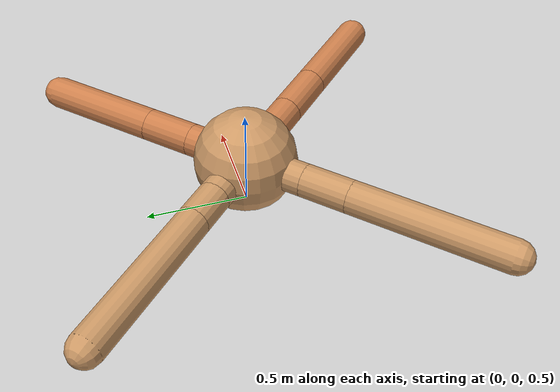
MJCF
<mujoco model="ant">
  <compiler angle="degree" coordinate="local" inertiafromgeom="true" />
  <option integrator="RK4" timestep="0.01" />
  <custom>
    <numeric data="0.0 0.0 0.55 1.0 0.0 0.0 0.0 0.0 1.0 0.0 -1.0 0.0 -1.0 0.0 1.0" name="init_qpos" />
  </custom>
  <default>
    <joint armature="1" damping="1" limited="true" />
    <geom conaffinity="0" condim="3" density="5.0" friction="1.5 0.1 0.1" margin="0.01" rgba="0.8 0.6 0.4 1" />
  </default>
  <worldbody>
    <body name="torso" pos="0 0 0.75">
      <geom name="torso_geom" pos="0 0 0" size="0.25" type="sphere" />

      <body name="front_left_leg" pos="0 0 0">
        <geom fromto="0.0 0.0 0.0 0.21171355510067494 0.21171355510067494 0.0" name="aux_1_geom" size="0.08" type="capsule" rgba=".8 .5 .3 1" />
        <body name="aux_1" pos="0.21171355510067494 0.21171355510067494 0.0">
          <joint axis="0 0 1" name="hip_1" pos="0.0 0.0 0.0" range="-40 40" type="hinge" />
          <geom fromto="0.0 0.0 0.0 0.1734951997041448 0.1734951997041448 0.0" name="left_leg_geom" size="0.08" type="capsule" rgba=".8 .5 .3 1" />
          <body pos="0.1734951997041448 0.1734951997041448 0.0" name="front_left_foot">
            <joint axis="-1 1 0" name="ankle_1" pos="0.0 0.0 0.0" range="30 100" type="hinge" />
            <geom fromto="0.0 0.0 0.0 0.4024233008820799 0.4024233008820799 0.0" name="left_ankle_geom" size="0.08" type="capsule" rgba=".8 .5 .3 1" />
          </body>
        </body>
      </body>
      <body name="front_right_leg" pos="0 0 0">
        <geom fromto="0.0 0.0 0.0 -0.20645844132458113 0.20645844132458113 0.0" name="aux_2_geom" size="0.08" type="capsule" />
        <body name="aux_2" pos="-0.20645844132458113 0.20645844132458113 0.0">
          <joint axis="0 0 1" name="hip_2" pos="0.0 0.0 0.0" range="-40 40" type="hinge" />
          <geom fromto="0.0 0.0 0.0 -0.12540304983378872 0.12540304983378872 0.0" name="right_leg_geom" size="0.08" type="capsule" />
          <body pos="-0.12540304983378872 0.12540304983378872 0.0" name="front_right_foot">
            <joint axis="1 1 0" name="ankle_2" pos="0.0 0.0 0.0" range="-100 -30" type="hinge" />
            <geom fromto="0.0 0.0 0.0 -0.5400588570009816 0.5400588570009816 0.0" name="right_ankle_geom" size="0.08" type="capsule" />
          </body>
        </body>
      </body>
      <body name="left_back_leg" pos="0 0 0">
        <geom fromto="0.0 0.0 0.0 -0.2209106217584791 -0.2209106217584791 0.0" name="aux_3_geom" size="0.08" type="capsule" />
        <body name="aux_3" pos="-0.2209106217584791 -0.2209106217584791 0.0">
          <joint axis="0 0 1" name="hip_3" pos="0.0 0.0 0.0" range="-40 40" type="hinge" />
          <geom fromto="0.0 0.0 0.0 -0.16329081533682338 -0.16329081533682338 0.0" name="back_leg_geom" size="0.08" type="capsule" />
          <body pos="-0.16329081533682338 -0.16329081533682338 0.0" name="left_back_foot">
            <joint axis="-1 1 0" name="ankle_3" pos="0.0 0.0 0.0" range="-100 -30" type="hinge" />
            <geom fromto="0.0 0.0 0.0 -0.5382719876646167 -0.5382719876646167 0.0" name="third_ankle_geom" size="0.08" type="capsule" />
          </body>
        </body>
      </body>
      <body name="right_back_leg" pos="0 0 0">
        <geom fromto="0.0 0.0 0.0 0.297533979901728 -0.297533979901728 0.0" name="aux_4_geom" size="0.08" type="capsule" rgba=".8 .5 .3 1" />
        <body name="aux_4" pos="0.297533979901728 -0.297533979901728 0.0">
          <joint axis="0 0 1" name="hip_4" pos="0.0 0.0 0.0" range="-40 40" type="hinge" />
          <geom fromto="0.0 0.0 0.0 0.19637023210632612 -0.19637023210632612 0.0" name="rightback_leg_geom" size="0.08" type="capsule" rgba=".8 .5 .3 1" />
          <body pos="0.19637023210632612 -0.19637023210632612 0.0" name="right_back_foot">
            <joint axis="1 1 0" name="ankle_4" pos="0.0 0.0 0.0" range="30 100" type="hinge" />
            <geom fromto="0.0 0.0 0.0 0.38393798558487763 -0.38393798558487763 0.0" name="fourth_ankle_geom" size="0.08" type="capsule" rgba=".8 .5 .3 1" />
          </body>
        </body>
      </body>
    </body>
  </worldbody>
  <actuator>
    <motor ctrllimited="true" ctrlrange="-1.0 1.0" joint="hip_4" gear="150" />
    <motor ctrllimited="true" ctrlrange="-1.0 1.0" joint="ankle_4" gear="150" />
    <motor ctrllimited="true" ctrlrange="-1.0 1.0" joint="hip_1" gear="150" />
    <motor ctrllimited="true" ctrlrange="-1.0 1.0" joint="ankle_1" gear="150" />
    <motor ctrllimited="true" ctrlrange="-1.0 1.0" joint="hip_2" gear="150" />
    <motor ctrllimited="true" ctrlrange="-1.0 1.0" joint="ankle_2" gear="150" />
    <motor ctrllimited="true" ctrlrange="-1.0 1.0" joint="hip_3" gear="150" />
    <motor ctrllimited="true" ctrlrange="-1.0 1.0" joint="ankle_3" gear="150" />
  </actuator>
</mujoco>
